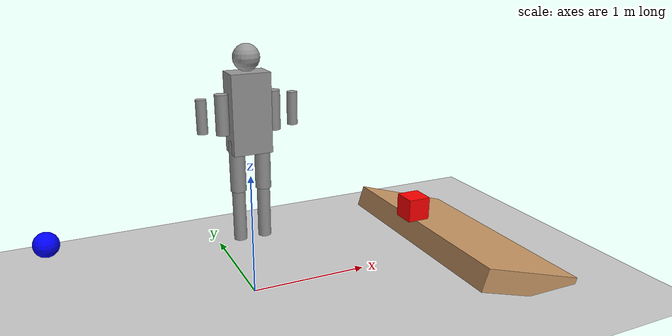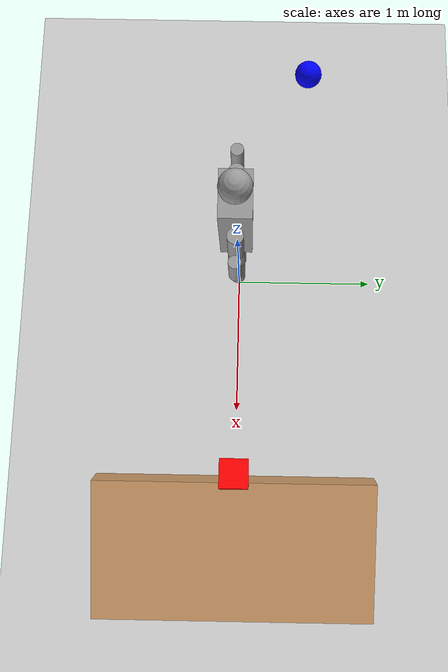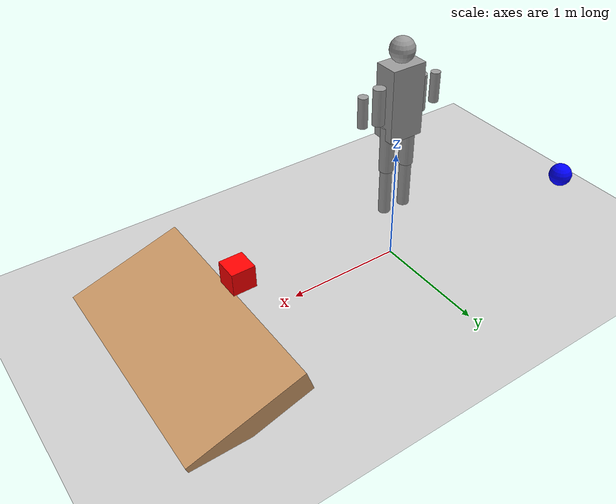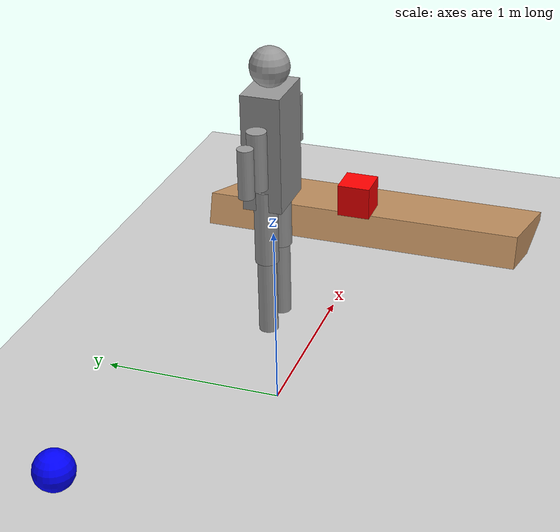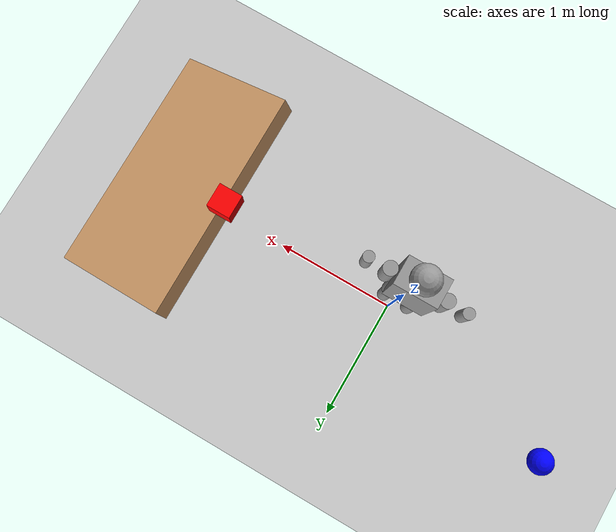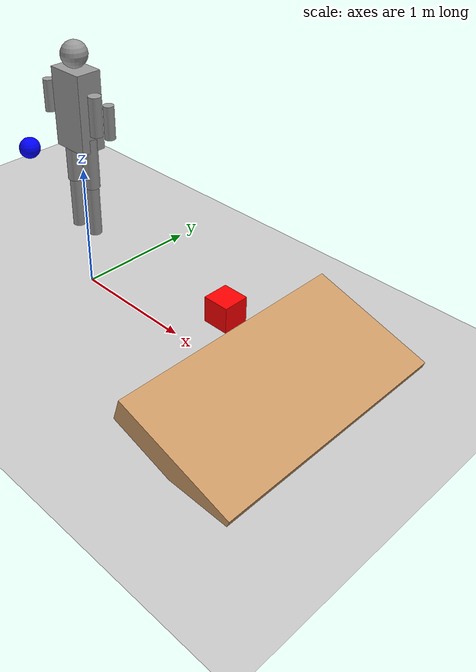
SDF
<sdf version="1.6">
 <world name="physics_demo_world">
  <physics name="ode_physics" type="ode">
   <gravity>0 0 -9.8</gravity>
   <max_step_size>0.001</max_step_size>
   <real_time_factor>1.0</real_time_factor>
   <real_time_update_rate>1000.0</real_time_update_rate>
   <ode>
    <solver><type>quick</type><iters>10</iters><sor>1.3</sor></solver>
    <constraints>
     <cfm>1e-5</cfm>
     <erp>0.2</erp>
     <contact_max_correcting_vel>100.0</contact_max_correcting_vel>
     <contact_surface_layer>0.001</contact_surface_layer>
    </constraints>
   </ode>
  </physics>
  <include><uri>model://ground_plane</uri></include>
  <include><uri>model://sun</uri></include>
  <model name="simple_humanoid">
   <pose>0 0 0.8 0 0 0</pose>
   <link name="torso">
    <pose>0 0 0.7 0 0 0</pose>
    <collision name="torso_collision"><geometry><box><size>0.3 0.2 0.6</size></box></geometry></collision>
    <visual name="torso_visual">
     <geometry><box><size>0.3 0.2 0.6</size></box></geometry>
     <material><ambient>0.8 0.8 0.8 1</ambient><diffuse>0.6 0.6 0.6 1</diffuse></material>
    </visual>
    <inertial>
     <mass>5.0</mass>
     <inertia><ixx>0.2</ixx><ixy>0</ixy><ixz>0</ixz><iyy>0.2</iyy><iyz>0</iyz><izz>0.2</izz></inertia>
    </inertial>
   </link>
   <link name="head">
    <pose>0 0 1.1 0 0 0</pose>
    <collision name="head_collision"><geometry><sphere><radius>0.1</radius></sphere></geometry></collision>
    <visual name="head_visual">
     <geometry><sphere><radius>0.1</radius></sphere></geometry>
     <material><ambient>0.8 0.8 0.8 1</ambient><diffuse>0.6 0.6 0.6 1</diffuse></material>
    </visual>
    <inertial>
     <mass>1.0</mass>
     <inertia><ixx>0.004</ixx><ixy>0</ixy><ixz>0</ixz><iyy>0.004</iyy><iyz>0</iyz><izz>0.004</izz></inertia>
    </inertial>
   </link>
   <link name="left_upper_arm">
    <pose>-0.2 0 0.7 0 0 0</pose>
    <collision name="left_upper_arm_collision">
     <geometry><cylinder><radius>0.05</radius><length>0.3</length></cylinder></geometry>
    </collision>
    <visual name="left_upper_arm_visual">
     <geometry><cylinder><radius>0.05</radius><length>0.3</length></cylinder></geometry>
     <material><ambient>0.8 0.8 0.8 1</ambient><diffuse>0.6 0.6 0.6 1</diffuse></material>
    </visual>
    <inertial>
     <mass>0.5</mass>
     <inertia><ixx>0.005</ixx><ixy>0</ixy><ixz>0</ixz><iyy>0.005</iyy><iyz>0</iyz><izz>0.001</izz></inertia>
    </inertial>
   </link>
   <link name="left_lower_arm">
    <pose>-0.35 0 0.7 0 0 0</pose>
    <collision name="left_lower_arm_collision">
     <geometry><cylinder><radius>0.04</radius><length>0.25</length></cylinder></geometry>
    </collision>
    <visual name="left_lower_arm_visual">
     <geometry><cylinder><radius>0.04</radius><length>0.25</length></cylinder></geometry>
     <material><ambient>0.8 0.8 0.8 1</ambient><diffuse>0.6 0.6 0.6 1</diffuse></material>
    </visual>
    <inertial>
     <mass>0.3</mass>
     <inertia><ixx>0.003</ixx><ixy>0</ixy><ixz>0</ixz><iyy>0.003</iyy><iyz>0</iyz><izz>0.0008</izz></inertia>
    </inertial>
   </link>
   <link name="right_upper_arm">
    <pose>0.2 0 0.7 0 0 0</pose>
    <collision name="right_upper_arm_collision">
     <geometry><cylinder><radius>0.05</radius><length>0.3</length></cylinder></geometry>
    </collision>
    <visual name="right_upper_arm_visual">
     <geometry><cylinder><radius>0.05</radius><length>0.3</length></cylinder></geometry>
     <material><ambient>0.8 0.8 0.8 1</ambient><diffuse>0.6 0.6 0.6 1</diffuse></material>
    </visual>
    <inertial>
     <mass>0.5</mass>
     <inertia><ixx>0.005</ixx><ixy>0</ixy><ixz>0</ixz><iyy>0.005</iyy><iyz>0</iyz><izz>0.001</izz></inertia>
    </inertial>
   </link>
   <link name="right_lower_arm">
    <pose>0.35 0 0.7 0 0 0</pose>
    <collision name="right_lower_arm_collision">
     <geometry><cylinder><radius>0.04</radius><length>0.25</length></cylinder></geometry>
    </collision>
    <visual name="right_lower_arm_visual">
     <geometry><cylinder><radius>0.04</radius><length>0.25</length></cylinder></geometry>
     <material><ambient>0.8 0.8 0.8 1</ambient><diffuse>0.6 0.6 0.6 1</diffuse></material>
    </visual>
    <inertial>
     <mass>0.3</mass>
     <inertia><ixx>0.003</ixx><ixy>0</ixy><ixz>0</ixz><iyy>0.003</iyy><iyz>0</iyz><izz>0.0008</izz></inertia>
    </inertial>
   </link>
   <link name="left_upper_leg">
    <pose>-0.1 0 0.3 0 0 0</pose>
    <collision name="left_upper_leg_collision">
     <geometry><cylinder><radius>0.06</radius><length>0.4</length></cylinder></geometry>
    </collision>
    <visual name="left_upper_leg_visual">
     <geometry><cylinder><radius>0.06</radius><length>0.4</length></cylinder></geometry>
     <material><ambient>0.8 0.8 0.8 1</ambient><diffuse>0.6 0.6 0.6 1</diffuse></material>
    </visual>
    <inertial>
     <mass>1.0</mass>
     <inertia><ixx>0.015</ixx><ixy>0</ixy><ixz>0</ixz><iyy>0.015</iyy><iyz>0</iyz><izz>0.003</izz></inertia>
    </inertial>
   </link>
   <link name="left_lower_leg">
    <pose>-0.1 0 -0.1 0 0 0</pose>
    <collision name="left_lower_leg_collision">
     <geometry><cylinder><radius>0.05</radius><length>0.4</length></cylinder></geometry>
    </collision>
    <visual name="left_lower_leg_visual">
     <geometry><cylinder><radius>0.05</radius><length>0.4</length></cylinder></geometry>
     <material><ambient>0.8 0.8 0.8 1</ambient><diffuse>0.6 0.6 0.6 1</diffuse></material>
    </visual>
    <inertial>
     <mass>0.8</mass>
     <inertia><ixx>0.01</ixx><ixy>0</ixy><ixz>0</ixz><iyy>0.01</iyy><iyz>0</iyz><izz>0.002</izz></inertia>
    </inertial>
   </link>
   <link name="right_upper_leg">
    <pose>0.1 0 0.3 0 0 0</pose>
    <collision name="right_upper_leg_collision">
     <geometry><cylinder><radius>0.06</radius><length>0.4</length></cylinder></geometry>
    </collision>
    <visual name="right_upper_leg_visual">
     <geometry><cylinder><radius>0.06</radius><length>0.4</length></cylinder></geometry>
     <material><ambient>0.8 0.8 0.8 1</ambient><diffuse>0.6 0.6 0.6 1</diffuse></material>
    </visual>
    <inertial>
     <mass>1.0</mass>
     <inertia><ixx>0.015</ixx><ixy>0</ixy><ixz>0</ixz><iyy>0.015</iyy><iyz>0</iyz><izz>0.003</izz></inertia>
    </inertial>
   </link>
   <link name="right_lower_leg">
    <pose>0.1 0 -0.1 0 0 0</pose>
    <collision name="right_lower_leg_collision">
     <geometry><cylinder><radius>0.05</radius><length>0.4</length></cylinder></geometry>
    </collision>
    <visual name="right_lower_leg_visual">
     <geometry><cylinder><radius>0.05</radius><length>0.4</length></cylinder></geometry>
     <material><ambient>0.8 0.8 0.8 1</ambient><diffuse>0.6 0.6 0.6 1</diffuse></material>
    </visual>
    <inertial>
     <mass>0.8</mass>
     <inertia><ixx>0.01</ixx><ixy>0</ixy><ixz>0</ixz><iyy>0.01</iyy><iyz>0</iyz><izz>0.002</izz></inertia>
    </inertial>
   </link>
   <joint name="torso_head" type="revolute">
    <parent>torso</parent>
    <child>head</child>
    <axis xyz="0 1 0">
     <limit lower="-0.5" upper="0.5" effort="10" velocity="1"/>
     <dynamics damping="0.1" friction="0.1"/>
    </axis>
    <pose>0 0 0.4 0 0 0</pose>
   </joint>
   <joint name="torso_left_shoulder" type="revolute">
    <parent>torso</parent>
    <child>left_upper_arm</child>
    <axis xyz="0 1 0">
     <limit lower="-1.57" upper="1.57" effort="20" velocity="2"/>
     <dynamics damping="0.2" friction="0.15"/>
    </axis>
    <pose>-0.15 0 0.3 0 0 0</pose>
   </joint>
   <joint name="left_shoulder_elbow" type="revolute">
    <parent>left_upper_arm</parent>
    <child>left_lower_arm</child>
    <axis xyz="0 0 1">
     <limit lower="-1.57" upper="1.57" effort="15" velocity="2"/>
     <dynamics damping="0.1" friction="0.1"/>
    </axis>
    <pose>-0.15 0 0 0 0 0</pose>
   </joint>
   <joint name="torso_right_shoulder" type="revolute">
    <parent>torso</parent>
    <child>right_upper_arm</child>
    <axis xyz="0 1 0">
     <limit lower="-1.57" upper="1.57" effort="20" velocity="2"/>
     <dynamics damping="0.2" friction="0.15"/>
    </axis>
    <pose>0.15 0 0.3 0 0 0</pose>
   </joint>
   <joint name="right_shoulder_elbow" type="revolute">
    <parent>right_upper_arm</parent>
    <child>right_lower_arm</child>
    <axis xyz="0 0 1">
     <limit lower="-1.57" upper="1.57" effort="15" velocity="2"/>
     <dynamics damping="0.1" friction="0.1"/>
    </axis>
    <pose>0.15 0 0 0 0 0</pose>
   </joint>
   <joint name="torso_left_hip" type="revolute">
    <parent>torso</parent>
    <child>left_upper_leg</child>
    <axis xyz="0 1 0">
     <limit lower="-1.57" upper="0.5" effort="30" velocity="1.5"/>
     <dynamics damping="0.3" friction="0.2"/>
    </axis>
    <pose>-0.1 0 0.1 0 0 0</pose>
   </joint>
   <joint name="left_hip_knee" type="revolute">
    <parent>left_upper_leg</parent>
    <child>left_lower_leg</child>
    <axis xyz="0 0 1">
     <limit lower="0" upper="1.57" effort="25" velocity="1.5"/>
     <dynamics damping="0.2" friction="0.15"/>
    </axis>
    <pose>0 0 -0.2 0 0 0</pose>
   </joint>
   <joint name="torso_right_hip" type="revolute">
    <parent>torso</parent>
    <child>right_upper_leg</child>
    <axis xyz="0 1 0">
     <limit lower="-1.57" upper="0.5" effort="30" velocity="1.5"/>
     <dynamics damping="0.3" friction="0.2"/>
    </axis>
    <pose>0.1 0 0.1 0 0 0</pose>
   </joint>
   <joint name="right_hip_knee" type="revolute">
    <parent>right_upper_leg</parent>
    <child>right_lower_leg</child>
    <axis xyz="0 0 1">
     <limit lower="0" upper="1.57" effort="25" velocity="1.5"/>
     <dynamics damping="0.2" friction="0.15"/>
    </axis>
    <pose>0 0 -0.2 0 0 0</pose>
   </joint>
  </model>
  <model name="physics_box">
   <pose>1.5 0 0.5 0 0 0</pose>
   <link name="link">
    <collision name="collision">
     <geometry><box><size>0.2 0.2 0.2</size></box></geometry>
     <surface>
      <friction><ode><mu>0.8</mu><mu2>0.8</mu2></ode></friction>
      <bounce><restitution_coefficient>0.1</restitution_coefficient></bounce>
      <contact>
       <ode><soft_cfm>0.000001</soft_cfm><soft_erp>0.2</soft_erp><kp>1000000000000.0</kp><kd>1.0</kd></ode>
      </contact>
     </surface>
    </collision>
    <visual name="visual">
     <geometry><box><size>0.2 0.2 0.2</size></box></geometry>
     <material><ambient>1 0 0 1</ambient><diffuse>1 0 0 1</diffuse></material>
    </visual>
    <inertial>
     <mass>0.5</mass>
     <inertia><ixx>0.0033</ixx><ixy>0</ixy><ixz>0</ixz><iyy>0.0033</iyy><iyz>0</iyz><izz>0.0033</izz></inertia>
    </inertial>
   </link>
  </model>
  <model name="physics_sphere">
   <pose>-1.5 0.5 0.5 0 0 0</pose>
   <link name="link">
    <collision name="collision">
     <geometry><sphere><radius>0.1</radius></sphere></geometry>
     <surface>
      <friction><ode><mu>0.5</mu><mu2>0.5</mu2></ode></friction>
      <bounce><restitution_coefficient>0.3</restitution_coefficient></bounce>
     </surface>
    </collision>
    <visual name="visual">
     <geometry><sphere><radius>0.1</radius></sphere></geometry>
     <material><ambient>0 0 1 1</ambient><diffuse>0 0 1 1</diffuse></material>
    </visual>
    <inertial>
     <mass>0.3</mass>
     <inertia><ixx>0.0012</ixx><ixy>0</ixy><ixz>0</ixz><iyy>0.0012</iyy><iyz>0</iyz><izz>0.0012</izz></inertia>
    </inertial>
   </link>
  </model>
  <model name="simple_ramp">
   <static>true</static>
   <link name="link">
    <collision name="collision">
     <geometry><box><size>1.0 2.0 0.2</size></box></geometry>
     <pose>2 0 0.1 0 0.3 0</pose>
    </collision>
    <visual name="visual">
     <geometry><box><size>1.0 2.0 0.2</size></box></geometry>
     <pose>2 0 0.1 0 0.3 0</pose>
     <material><ambient>0.6 0.4 0.2 1</ambient><diffuse>0.8 0.6 0.4 1</diffuse></material>
    </visual>
    <inertial>
     <mass>10.0</mass>
     <inertia><ixx>1.0</ixx><ixy>0</ixy><ixz>0</ixz><iyy>1.0</iyy><iyz>0</iyz><izz>1.0</izz></inertia>
    </inertial>
   </link>
  </model>
 </world>
</sdf>
